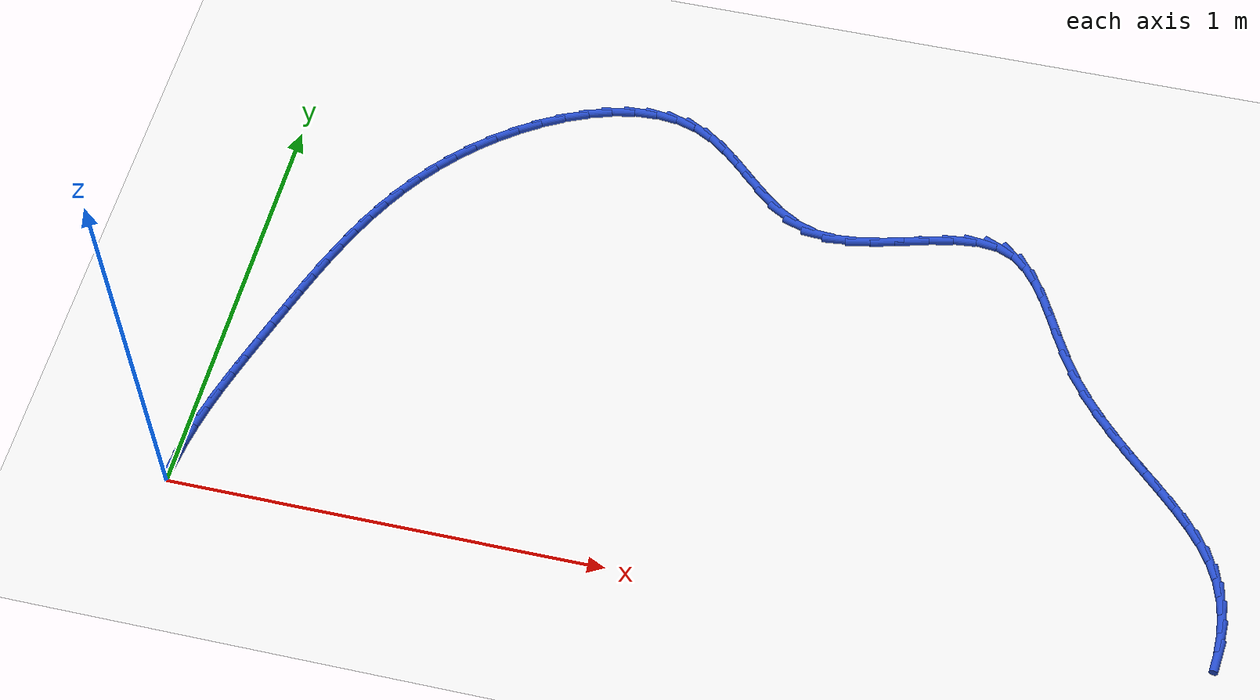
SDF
<sdf version="1.6">
 <world name="default">
  <model name="ground_plane">
   <static>1</static>
   <link name="link">
    <collision name="collision">
     <geometry><plane><normal>0 0 1</normal><size>100 100</size></plane></geometry>
     <surface><friction><ode><mu>100</mu><mu2>50</mu2></ode></friction></surface>
    </collision>
    <visual name="visual">
     <cast_shadows>0</cast_shadows>
     <geometry><plane><normal>0 0 1</normal><size>100 100</size></plane></geometry>
     <material>
      <script><uri>file://media/materials/scripts/gazebo.material</uri><name>Gazebo/WhiteGlow</name></script>
     </material>
    </visual>
   </link>
  </model>
  <model name="line">
   <link name="link_1">
    <pose>0.0035729545520218997 0.05207063967237306 0.01 0 1.57 1.4427990374859403</pose>
    <collision name="collision">
     <geometry><cylinder><radius>0.01</radius><length>0.08</length></cylinder></geometry>
    </collision>
    <visual name="visual">
     <material>
      <script><name>Gazebo/Blue</name><uri>file://media/materials/scripts/gazebo.material</uri></script>
     </material>
     <geometry><cylinder><radius>0.01</radius><length>0.08</length></cylinder></geometry>
    </visual>
   </link>
   <link name="link_2">
    <pose>0.010229735788563515 0.10379351710880236 0.01 0 1.57 1.3916028461294085</pose>
    <collision name="collision">
     <geometry><cylinder><radius>0.01</radius><length>0.08</length></cylinder></geometry>
    </collision>
    <visual name="visual">
     <material>
      <script><name>Gazebo/Blue</name><uri>file://media/materials/scripts/gazebo.material</uri></script>
     </material>
     <geometry><cylinder><radius>0.01</radius><length>0.08</length></cylinder></geometry>
    </visual>
   </link>
   <link name="link_3">
    <pose>0.01954264943447804 0.15520732642693813 0.01 0 1.57 1.3488477445646985</pose>
    <collision name="collision">
     <geometry><cylinder><radius>0.01</radius><length>0.08</length></cylinder></geometry>
    </collision>
    <visual name="visual">
     <material>
      <script><name>Gazebo/Blue</name><uri>file://media/materials/scripts/gazebo.material</uri></script>
     </material>
     <geometry><cylinder><radius>0.01</radius><length>0.08</length></cylinder></geometry>
    </visual>
   </link>
   <link name="link_4">
    <pose>0.031084001214618663 0.20635076174443048 0.01 0 1.57 1.3144967172494701</pose>
    <collision name="collision">
     <geometry><cylinder><radius>0.01</radius><length>0.08</length></cylinder></geometry>
    </collision>
    <visual name="visual">
     <material>
      <script><name>Gazebo/Blue</name><uri>file://media/materials/scripts/gazebo.material</uri></script>
     </material>
     <geometry><cylinder><radius>0.01</radius><length>0.08</length></cylinder></geometry>
    </visual>
   </link>
   <link name="link_5">
    <pose>0.04442609685383854 0.2572625171789295 0.01 0 1.57 1.288417019254447</pose>
    <collision name="collision">
     <geometry><cylinder><radius>0.01</radius><length>0.08</length></cylinder></geometry>
    </collision>
    <visual name="visual">
     <material>
      <script><name>Gazebo/Blue</name><uri>file://media/materials/scripts/gazebo.material</uri></script>
     </material>
     <geometry><cylinder><radius>0.01</radius><length>0.08</length></cylinder></geometry>
    </visual>
   </link>
   <link name="link_6">
    <pose>0.05914124207699089 0.30798128684808523 0.01 0 1.57 1.270452076002687</pose>
    <collision name="collision">
     <geometry><cylinder><radius>0.01</radius><length>0.08</length></cylinder></geometry>
    </collision>
    <visual name="visual">
     <material>
      <script><name>Gazebo/Blue</name><uri>file://media/materials/scripts/gazebo.material</uri></script>
     </material>
     <geometry><cylinder><radius>0.01</radius><length>0.08</length></cylinder></geometry>
    </visual>
   </link>
   <link name="link_7">
    <pose>0.07480174260892881 0.3585457648695478 0.01 0 1.57 1.26047281146192</pose>
    <collision name="collision">
     <geometry><cylinder><radius>0.01</radius><length>0.08</length></cylinder></geometry>
    </collision>
    <visual name="visual">
     <material>
      <script><name>Gazebo/Blue</name><uri>file://media/materials/scripts/gazebo.material</uri></script>
     </material>
     <geometry><cylinder><radius>0.01</radius><length>0.08</length></cylinder></geometry>
    </visual>
   </link>
   <link name="link_8">
    <pose>0.09097990417450555 0.4089946453609672 0.01 0 1.57 1.2581078427274297</pose>
    <collision name="collision">
     <geometry><cylinder><radius>0.01</radius><length>0.08</length></cylinder></geometry>
    </collision>
    <visual name="visual">
     <material>
      <script><name>Gazebo/Blue</name><uri>file://media/materials/scripts/gazebo.material</uri></script>
     </material>
     <geometry><cylinder><radius>0.01</radius><length>0.08</length></cylinder></geometry>
    </visual>
   </link>
   <link name="link_9">
    <pose>0.10726375738983393 0.4593631404900979 0.01 0 1.57 1.2565748195071877</pose>
    <collision name="collision">
     <geometry><cylinder><radius>0.01</radius><length>0.08</length></cylinder></geometry>
    </collision>
    <visual name="visual">
     <material>
      <script><name>Gazebo/Blue</name><uri>file://media/materials/scripts/gazebo.material</uri></script>
     </material>
     <geometry><cylinder><radius>0.01</radius><length>0.08</length></cylinder></geometry>
    </visual>
   </link>
   <link name="link_10">
    <pose>0.12359295539463723 0.5096086029349738 0.01 0 1.57 1.2491787727624224</pose>
    <collision name="collision">
     <geometry><cylinder><radius>0.01</radius><length>0.08</length></cylinder></geometry>
    </collision>
    <visual name="visual">
     <material>
      <script><name>Gazebo/Blue</name><uri>file://media/materials/scripts/gazebo.material</uri></script>
     </material>
     <geometry><cylinder><radius>0.01</radius><length>0.08</length></cylinder></geometry>
    </visual>
   </link>
   <link name="link_11">
    <pose>0.14025327953296127 0.5596117424865639 0.01 0 1.57 1.2355857287433745</pose>
    <collision name="collision">
     <geometry><cylinder><radius>0.01</radius><length>0.08</length></cylinder></geometry>
    </collision>
    <visual name="visual">
     <material>
      <script><name>Gazebo/Blue</name><uri>file://media/materials/scripts/gazebo.material</uri></script>
     </material>
     <geometry><cylinder><radius>0.01</radius><length>0.08</length></cylinder></geometry>
    </visual>
   </link>
   <link name="link_12">
    <pose>0.15754513709081325 0.609250030325392 0.01 0 1.57 1.2157372158213886</pose>
    <collision name="collision">
     <geometry><cylinder><radius>0.01</radius><length>0.08</length></cylinder></geometry>
    </collision>
    <visual name="visual">
     <material>
      <script><name>Gazebo/Blue</name><uri>file://media/materials/scripts/gazebo.material</uri></script>
     </material>
     <geometry><cylinder><radius>0.01</radius><length>0.08</length></cylinder></geometry>
    </visual>
   </link>
   <link name="link_13">
    <pose>0.1757689353542005 0.6584009376319819 0.01 0 1.57 1.1895842567282633</pose>
    <collision name="collision">
     <geometry><cylinder><radius>0.01</radius><length>0.08</length></cylinder></geometry>
    </collision>
    <visual name="visual">
     <material>
      <script><name>Gazebo/Blue</name><uri>file://media/materials/scripts/gazebo.material</uri></script>
     </material>
     <geometry><cylinder><radius>0.01</radius><length>0.08</length></cylinder></geometry>
    </visual>
   </link>
   <link name="link_14">
    <pose>0.19522508160913027 0.7069419355868571 0.01 0 1.57 1.1571110114907803</pose>
    <collision name="collision">
     <geometry><cylinder><radius>0.01</radius><length>0.08</length></cylinder></geometry>
    </collision>
    <visual name="visual">
     <material>
      <script><name>Gazebo/Blue</name><uri>file://media/materials/scripts/gazebo.material</uri></script>
     </material>
     <geometry><cylinder><radius>0.01</radius><length>0.08</length></cylinder></geometry>
    </visual>
   </link>
   <link name="link_15">
    <pose>0.21621398314160983 0.7547504953705414 0.01 0 1.57 1.1183662119507802</pose>
    <collision name="collision">
     <geometry><cylinder><radius>0.01</radius><length>0.08</length></cylinder></geometry>
    </collision>
    <visual name="visual">
     <material>
      <script><name>Gazebo/Blue</name><uri>file://media/materials/scripts/gazebo.material</uri></script>
     </material>
     <geometry><cylinder><radius>0.01</radius><length>0.08</length></cylinder></geometry>
    </visual>
   </link>
   <link name="link_16">
    <pose>0.23903604723764654 0.8017040881635586 0.01 0 1.57 1.07350096493883</pose>
    <collision name="collision">
     <geometry><cylinder><radius>0.01</radius><length>0.08</length></cylinder></geometry>
    </collision>
    <visual name="visual">
     <material>
      <script><name>Gazebo/Blue</name><uri>file://media/materials/scripts/gazebo.material</uri></script>
     </material>
     <geometry><cylinder><radius>0.01</radius><length>0.08</length></cylinder></geometry>
    </visual>
   </link>
   <link name="link_17">
    <pose>0.26399168118324756 0.8476801851464322 0.01 0 1.57 1.0228093818827795</pose>
    <collision name="collision">
     <geometry><cylinder><radius>0.01</radius><length>0.08</length></cylinder></geometry>
    </collision>
    <visual name="visual">
     <material>
      <script><name>Gazebo/Blue</name><uri>file://media/materials/scripts/gazebo.material</uri></script>
     </material>
     <geometry><cylinder><radius>0.01</radius><length>0.08</length></cylinder></geometry>
    </visual>
   </link>
   <link name="link_18">
    <pose>0.29138129226442033 0.8925562574996861 0.01 0 1.57 0.9667657460764356</pose>
    <collision name="collision">
     <geometry><cylinder><radius>0.01</radius><length>0.08</length></cylinder></geometry>
    </collision>
    <visual name="visual">
     <material>
      <script><name>Gazebo/Blue</name><uri>file://media/materials/scripts/gazebo.material</uri></script>
     </material>
     <geometry><cylinder><radius>0.01</radius><length>0.08</length></cylinder></geometry>
    </visual>
   </link>
   <link name="link_19">
    <pose>0.32150528776717213 0.9362097764038444 0.01 0 1.57 0.9060493488679746</pose>
    <collision name="collision">
     <geometry><cylinder><radius>0.01</radius><length>0.08</length></cylinder></geometry>
    </collision>
    <visual name="visual">
     <material>
      <script><name>Gazebo/Blue</name><uri>file://media/materials/scripts/gazebo.material</uri></script>
     </material>
     <geometry><cylinder><radius>0.01</radius><length>0.08</length></cylinder></geometry>
    </visual>
   </link>
   <link name="link_20">
    <pose>0.35466407497751007 0.9785182130394301 0.01 0 1.57 0.8415471366857648</pose>
    <collision name="collision">
     <geometry><cylinder><radius>0.01</radius><length>0.08</length></cylinder></geometry>
    </collision>
    <visual name="visual">
     <material>
      <script><name>Gazebo/Blue</name><uri>file://media/materials/scripts/gazebo.material</uri></script>
     </material>
     <geometry><cylinder><radius>0.01</radius><length>0.08</length></cylinder></geometry>
    </visual>
   </link>
   <link name="link_21">
    <pose>0.3911580611814415 1.0193590385869669 0.01 0 1.57 0.7743265099411254</pose>
    <collision name="collision">
     <geometry><cylinder><radius>0.01</radius><length>0.08</length></cylinder></geometry>
    </collision>
    <visual name="visual">
     <material>
      <script><name>Gazebo/Blue</name><uri>file://media/materials/scripts/gazebo.material</uri></script>
     </material>
     <geometry><cylinder><radius>0.01</radius><length>0.08</length></cylinder></geometry>
    </visual>
   </link>
   <link name="link_22">
    <pose>0.4312876536649738 1.0586097242269792 0.01 0 1.57 0.7058721058696109</pose>
    <collision name="collision">
     <geometry><cylinder><radius>0.01</radius><length>0.08</length></cylinder></geometry>
    </collision>
    <visual name="visual">
     <material>
      <script><name>Gazebo/Blue</name><uri>file://media/materials/scripts/gazebo.material</uri></script>
     </material>
     <geometry><cylinder><radius>0.01</radius><length>0.08</length></cylinder></geometry>
    </visual>
   </link>
   <link name="link_23">
    <pose>0.47520745321118857 1.096045927568962 0.01 0 1.57 0.6371506141087543</pose>
    <collision name="collision">
     <geometry><cylinder><radius>0.01</radius><length>0.08</length></cylinder></geometry>
    </collision>
    <visual name="visual">
     <material>
      <script><name>Gazebo/Blue</name><uri>file://media/materials/scripts/gazebo.material</uri></script>
     </material>
     <geometry><cylinder><radius>0.01</radius><length>0.08</length></cylinder></geometry>
    </visual>
   </link>
   <link name="link_24">
    <pose>0.5223938937195223 1.1309697567524502 0.01 0 1.57 0.5656986153214777</pose>
    <collision name="collision">
     <geometry><cylinder><radius>0.01</radius><length>0.08</length></cylinder></geometry>
    </collision>
    <visual name="visual">
     <material>
      <script><name>Gazebo/Blue</name><uri>file://media/materials/scripts/gazebo.material</uri></script>
     </material>
     <geometry><cylinder><radius>0.01</radius><length>0.08</length></cylinder></geometry>
    </visual>
   </link>
   <link name="link_25">
    <pose>0.5721263911060521 1.162545746461474 0.01 0 1.57 0.4883719128299961</pose>
    <collision name="collision">
     <geometry><cylinder><radius>0.01</radius><length>0.08</length></cylinder></geometry>
    </collision>
    <visual name="visual">
     <material>
      <script><name>Gazebo/Blue</name><uri>file://media/materials/scripts/gazebo.material</uri></script>
     </material>
     <geometry><cylinder><radius>0.01</radius><length>0.08</length></cylinder></geometry>
    </visual>
   </link>
   <link name="link_26">
    <pose>0.6236843397598721 1.1899384163482296 0.01 0 1.57 0.40174490105582505</pose>
    <collision name="collision">
     <geometry><cylinder><radius>0.01</radius><length>0.08</length></cylinder></geometry>
    </collision>
    <visual name="visual">
     <material>
      <script><name>Gazebo/Blue</name><uri>file://media/materials/scripts/gazebo.material</uri></script>
     </material>
     <geometry><cylinder><radius>0.01</radius><length>0.08</length></cylinder></geometry>
    </visual>
   </link>
   <link name="link_27">
    <pose>0.6763471340700766 1.2123122860649147 0.01 0 1.57 0.3018951826435892</pose>
    <collision name="collision">
     <geometry><cylinder><radius>0.01</radius><length>0.08</length></cylinder></geometry>
    </collision>
    <visual name="visual">
     <material>
      <script><name>Gazebo/Blue</name><uri>file://media/materials/scripts/gazebo.material</uri></script>
     </material>
     <geometry><cylinder><radius>0.01</radius><length>0.08</length></cylinder></geometry>
    </visual>
   </link>
   <link name="link_28">
    <pose>0.7293941684257602 1.228831875263726 0.01 0 1.57 0.18436869491970273</pose>
    <collision name="collision">
     <geometry><cylinder><radius>0.01</radius><length>0.08</length></cylinder></geometry>
    </collision>
    <visual name="visual">
     <material>
      <script><name>Gazebo/Blue</name><uri>file://media/materials/scripts/gazebo.material</uri></script>
     </material>
     <geometry><cylinder><radius>0.01</radius><length>0.08</length></cylinder></geometry>
    </visual>
   </link>
   <link name="link_29">
    <pose>0.782104837216016 1.2386617035968588 0.01 0 1.57 0.0445865423281976</pose>
    <collision name="collision">
     <geometry><cylinder><radius>0.01</radius><length>0.08</length></cylinder></geometry>
    </collision>
    <visual name="visual">
     <material>
      <script><name>Gazebo/Blue</name><uri>file://media/materials/scripts/gazebo.material</uri></script>
     </material>
     <geometry><cylinder><radius>0.01</radius><length>0.08</length></cylinder></geometry>
    </visual>
   </link>
   <link name="link_30">
    <pose>0.8337585348299392 1.2409662907165113 0.01 0 1.57 -0.12083200679489156</pose>
    <collision name="collision">
     <geometry><cylinder><radius>0.01</radius><length>0.08</length></cylinder></geometry>
    </collision>
    <visual name="visual">
     <material>
      <script><name>Gazebo/Blue</name><uri>file://media/materials/scripts/gazebo.material</uri></script>
     </material>
     <geometry><cylinder><radius>0.01</radius><length>0.08</length></cylinder></geometry>
    </visual>
   </link>
   <link name="link_31">
    <pose>0.8836346556566232 1.2349101562748794 0.01 0 1.57 -0.3114518587860264</pose>
    <collision name="collision">
     <geometry><cylinder><radius>0.01</radius><length>0.08</length></cylinder></geometry>
    </collision>
    <visual name="visual">
     <material>
      <script><name>Gazebo/Blue</name><uri>file://media/materials/scripts/gazebo.material</uri></script>
     </material>
     <geometry><cylinder><radius>0.01</radius><length>0.08</length></cylinder></geometry>
    </visual>
   </link>
   <link name="link_32">
    <pose>0.9310125940851623 1.2196578199241606 0.01 0 1.57 -0.5093944769780955</pose>
    <collision name="collision">
     <geometry><cylinder><radius>0.01</radius><length>0.08</length></cylinder></geometry>
    </collision>
    <visual name="visual">
     <material>
      <script><name>Gazebo/Blue</name><uri>file://media/materials/scripts/gazebo.material</uri></script>
     </material>
     <geometry><cylinder><radius>0.01</radius><length>0.08</length></cylinder></geometry>
    </visual>
   </link>
   <link name="link_33">
    <pose>0.9753923550490133 1.1948688829285614 0.01 0 1.57 -0.6541049799139567</pose>
    <collision name="collision">
     <geometry><cylinder><radius>0.01</radius><length>0.08</length></cylinder></geometry>
    </collision>
    <visual name="visual">
     <material>
      <script><name>Gazebo/Blue</name><uri>file://media/materials/scripts/gazebo.material</uri></script>
     </material>
     <geometry><cylinder><radius>0.01</radius><length>0.08</length></cylinder></geometry>
    </visual>
   </link>
   <link name="link_34">
    <pose>1.0173772684869675 1.1626789656555092 0.01 0 1.57 -0.7355201534508279</pose>
    <collision name="collision">
     <geometry><cylinder><radius>0.01</radius><length>0.08</length></cylinder></geometry>
    </collision>
    <visual name="visual">
     <material>
      <script><name>Gazebo/Blue</name><uri>file://media/materials/scripts/gazebo.material</uri></script>
     </material>
     <geometry><cylinder><radius>0.01</radius><length>0.08</length></cylinder></geometry>
    </visual>
   </link>
   <link name="link_35">
    <pose>1.0579148783533048 1.1259961539507097 0.01 0 1.57 -0.7627905425169553</pose>
    <collision name="collision">
     <geometry><cylinder><radius>0.01</radius><length>0.08</length></cylinder></geometry>
    </collision>
    <visual name="visual">
     <material>
      <script><name>Gazebo/Blue</name><uri>file://media/materials/scripts/gazebo.material</uri></script>
     </material>
     <geometry><cylinder><radius>0.01</radius><length>0.08</length></cylinder></geometry>
    </visual>
   </link>
   <link name="link_36">
    <pose>1.097952842314386 1.087728788846042 0.01 0 1.57 -0.7396800916671589</pose>
    <collision name="collision">
     <geometry><cylinder><radius>0.01</radius><length>0.08</length></cylinder></geometry>
    </collision>
    <visual name="visual">
     <material>
      <script><name>Gazebo/Blue</name><uri>file://media/materials/scripts/gazebo.material</uri></script>
     </material>
     <geometry><cylinder><radius>0.01</radius><length>0.08</length></cylinder></geometry>
    </visual>
   </link>
   <link name="link_37">
    <pose>1.1384388180365728 1.050785211373385 0.01 0 1.57 -0.6630756678665419</pose>
    <collision name="collision">
     <geometry><cylinder><radius>0.01</radius><length>0.08</length></cylinder></geometry>
    </collision>
    <visual name="visual">
     <material>
      <script><name>Gazebo/Blue</name><uri>file://media/materials/scripts/gazebo.material</uri></script>
     </material>
     <geometry><cylinder><radius>0.01</radius><length>0.08</length></cylinder></geometry>
    </visual>
   </link>
   <link name="link_38">
    <pose>1.1803204631862243 1.0180737625646175 0.01 0 1.57 -0.5242375365830264</pose>
    <collision name="collision">
     <geometry><cylinder><radius>0.01</radius><length>0.08</length></cylinder></geometry>
    </collision>
    <visual name="visual">
     <material>
      <script><name>Gazebo/Blue</name><uri>file://media/materials/scripts/gazebo.material</uri></script>
     </material>
     <geometry><cylinder><radius>0.01</radius><length>0.08</length></cylinder></geometry>
    </visual>
   </link>
   <link name="link_39">
    <pose>1.2245454354297027 0.992502783451618 0.01 0 1.57 -0.3157472961545364</pose>
    <collision name="collision">
     <geometry><cylinder><radius>0.01</radius><length>0.08</length></cylinder></geometry>
    </collision>
    <visual name="visual">
     <material>
      <script><name>Gazebo/Blue</name><uri>file://media/materials/scripts/gazebo.material</uri></script>
     </material>
     <geometry><cylinder><radius>0.01</radius><length>0.08</length></cylinder></geometry>
    </visual>
   </link>
   <link name="link_40">
    <pose>1.2720613380431465 0.9769804647768914 0.01 0 1.57 -0.07296806648989863</pose>
    <collision name="collision">
     <geometry><cylinder><radius>0.01</radius><length>0.08</length></cylinder></geometry>
    </collision>
    <visual name="visual">
     <material>
      <script><name>Gazebo/Blue</name><uri>file://media/materials/scripts/gazebo.material</uri></script>
     </material>
     <geometry><cylinder><radius>0.01</radius><length>0.08</length></cylinder></geometry>
    </visual>
   </link>
   <link name="link_41">
    <pose>1.323386452826087 0.9732287094854568 0.01 0 1.57 0.10461789030769843</pose>
    <collision name="collision">
     <geometry><cylinder><radius>0.01</radius><length>0.08</length></cylinder></geometry>
    </collision>
    <visual name="visual">
     <material>
      <script><name>Gazebo/Blue</name><uri>file://media/materials/scripts/gazebo.material</uri></script>
     </material>
     <geometry><cylinder><radius>0.01</radius><length>0.08</length></cylinder></geometry>
    </visual>
   </link>
   <link name="link_42">
    <pose>1.3775729698512553 0.9789183613038908 0.01 0 1.57 0.21080977844076354</pose>
    <collision name="collision">
     <geometry><cylinder><radius>0.01</radius><length>0.08</length></cylinder></geometry>
    </collision>
    <visual name="visual">
     <material>
      <script><name>Gazebo/Blue</name><uri>file://media/materials/scripts/gazebo.material</uri></script>
     </material>
     <geometry><cylinder><radius>0.01</radius><length>0.08</length></cylinder></geometry>
    </visual>
   </link>
   <link name="link_43">
    <pose>1.4333603952737892 0.9908562654492071 0.01 0 1.57 0.2610277934951713</pose>
    <collision name="collision">
     <geometry><cylinder><radius>0.01</radius><length>0.08</length></cylinder></geometry>
    </collision>
    <visual name="visual">
     <material>
      <script><name>Gazebo/Blue</name><uri>file://media/materials/scripts/gazebo.material</uri></script>
     </material>
     <geometry><cylinder><radius>0.01</radius><length>0.08</length></cylinder></geometry>
    </visual>
   </link>
   <link name="link_44">
    <pose>1.4894882352488263 1.0058492671384203 0.01 0 1.57 0.262848069948994</pose>
    <collision name="collision">
     <geometry><cylinder><radius>0.01</radius><length>0.08</length></cylinder></geometry>
    </collision>
    <visual name="visual">
     <material>
      <script><name>Gazebo/Blue</name><uri>file://media/materials/scripts/gazebo.material</uri></script>
     </material>
     <geometry><cylinder><radius>0.01</radius><length>0.08</length></cylinder></geometry>
    </visual>
   </link>
   <link name="link_45">
    <pose>1.544695995931503 1.020704211588544 0.01 0 1.57 0.21399014740650962</pose>
    <collision name="collision">
     <geometry><cylinder><radius>0.01</radius><length>0.08</length></cylinder></geometry>
    </collision>
    <visual name="visual">
     <material>
      <script><name>Gazebo/Blue</name><uri>file://media/materials/scripts/gazebo.material</uri></script>
     </material>
     <geometry><cylinder><radius>0.01</radius><length>0.08</length></cylinder></geometry>
    </visual>
   </link>
   <link name="link_46">
    <pose>1.5977231834769574 1.0322279440165931 0.01 0 1.57 0.10048232320105349</pose>
    <collision name="collision">
     <geometry><cylinder><radius>0.01</radius><length>0.08</length></cylinder></geometry>
    </collision>
    <visual name="visual">
     <material>
      <script><name>Gazebo/Blue</name><uri>file://media/materials/scripts/gazebo.material</uri></script>
     </material>
     <geometry><cylinder><radius>0.01</radius><length>0.08</length></cylinder></geometry>
    </visual>
   </link>
   <link name="link_47">
    <pose>1.647309304040325 1.0372273096395808 0.01 0 1.57 -0.10473294667288804</pose>
    <collision name="collision">
     <geometry><cylinder><radius>0.01</radius><length>0.08</length></cylinder></geometry>
    </collision>
    <visual name="visual">
     <material>
      <script><name>Gazebo/Blue</name><uri>file://media/materials/scripts/gazebo.material</uri></script>
     </material>
     <geometry><cylinder><radius>0.01</radius><length>0.08</length></cylinder></geometry>
    </visual>
   </link>
   <link name="link_48">
    <pose>1.692193863776745 1.0325091536745217 0.01 0 1.57 -0.41792675565798343</pose>
    <collision name="collision">
     <geometry><cylinder><radius>0.01</radius><length>0.08</length></cylinder></geometry>
    </collision>
    <visual name="visual">
     <material>
      <script><name>Gazebo/Blue</name><uri>file://media/materials/scripts/gazebo.material</uri></script>
     </material>
     <geometry><cylinder><radius>0.01</radius><length>0.08</length></cylinder></geometry>
    </visual>
   </link>
   <link name="link_49">
    <pose>1.7312501048889741 1.0151647402972477 0.01 0 1.57 -0.7212500035879534</pose>
    <collision name="collision">
     <geometry><cylinder><radius>0.01</radius><length>0.08</length></cylinder></geometry>
    </collision>
    <visual name="visual">
     <material>
      <script><name>Gazebo/Blue</name><uri>file://media/materials/scripts/gazebo.material</uri></script>
     </material>
     <geometry><cylinder><radius>0.01</radius><length>0.08</length></cylinder></geometry>
    </visual>
   </link>
   <link name="link_50">
    <pose>1.7648993177219 0.9855775966793549 0.01 0 1.57 -0.9246587629446178</pose>
    <collision name="collision">
     <geometry><cylinder><radius>0.01</radius><length>0.08</length></cylinder></geometry>
    </collision>
    <visual name="visual">
     <material>
      <script><name>Gazebo/Blue</name><uri>file://media/materials/scripts/gazebo.material</uri></script>
     </material>
     <geometry><cylinder><radius>0.01</radius><length>0.08</length></cylinder></geometry>
    </visual>
   </link>
   <link name="link_51">
    <pose>1.7945583925531294 0.9462486110278513 0.01 0 1.57 -1.04341330971691</pose>
    <collision name="collision">
     <geometry><cylinder><radius>0.01</radius><length>0.08</length></cylinder></geometry>
    </collision>
    <visual name="visual">
     <material>
      <script><name>Gazebo/Blue</name><uri>file://media/materials/scripts/gazebo.material</uri></script>
     </material>
     <geometry><cylinder><radius>0.01</radius><length>0.08</length></cylinder></geometry>
    </visual>
   </link>
   <link name="link_52">
    <pose>1.8216606724528261 0.8997136620120122 0.01 0 1.57 -1.1012867330618223</pose>
    <collision name="collision">
     <geometry><cylinder><radius>0.01</radius><length>0.08</length></cylinder></geometry>
    </collision>
    <visual name="visual">
     <material>
      <script><name>Gazebo/Blue</name><uri>file://media/materials/scripts/gazebo.material</uri></script>
     </material>
     <geometry><cylinder><radius>0.01</radius><length>0.08</length></cylinder></geometry>
    </visual>
   </link>
   <link name="link_53">
    <pose>1.847639500491152 0.8485086283011136 0.01 0 1.57 -1.112877896980893</pose>
    <collision name="collision">
     <geometry><cylinder><radius>0.01</radius><length>0.08</length></cylinder></geometry>
    </collision>
    <visual name="visual">
     <material>
      <script><name>Gazebo/Blue</name><uri>file://media/materials/scripts/gazebo.material</uri></script>
     </material>
     <geometry><cylinder><radius>0.01</radius><length>0.08</length></cylinder></geometry>
    </visual>
   </link>
   <link name="link_54">
    <pose>1.8739282197382698 0.7951693885644302 0.01 0 1.57 -1.083805874959155</pose>
    <collision name="collision">
     <geometry><cylinder><radius>0.01</radius><length>0.08</length></cylinder></geometry>
    </collision>
    <visual name="visual">
     <material>
      <script><name>Gazebo/Blue</name><uri>file://media/materials/scripts/gazebo.material</uri></script>
     </material>
     <geometry><cylinder><radius>0.01</radius><length>0.08</length></cylinder></geometry>
    </visual>
   </link>
   <link name="link_55">
    <pose>1.901960173264342 0.742231821471237 0.01 0 1.57 -1.0152717243889782</pose>
    <collision name="collision">
     <geometry><cylinder><radius>0.01</radius><length>0.08</length></cylinder></geometry>
    </collision>
    <visual name="visual">
     <material>
      <script><name>Gazebo/Blue</name><uri>file://media/materials/scripts/gazebo.material</uri></script>
     </material>
     <geometry><cylinder><radius>0.01</radius><length>0.08</length></cylinder></geometry>
    </visual>
   </link>
   <link name="link_56">
    <pose>1.9330748572564969 0.6921060615678157 0.01 0 1.57 -0.9367641811042429</pose>
    <collision name="collision">
     <geometry><cylinder><radius>0.01</radius><length>0.08</length></cylinder></geometry>
    </collision>
    <visual name="visual">
     <material>
      <script><name>Gazebo/Blue</name><uri>file://media/materials/scripts/gazebo.material</uri></script>
     </material>
     <geometry><cylinder><radius>0.01</radius><length>0.08</length></cylinder></geometry>
    </visual>
   </link>
   <link name="link_57">
    <pose>1.9673430254851392 0.6455022732220153 0.01 0 1.57 -0.8726429496231685</pose>
    <collision name="collision">
     <geometry><cylinder><radius>0.01</radius><length>0.08</length></cylinder></geometry>
    </collision>
    <visual name="visual">
     <material>
      <script><name>Gazebo/Blue</name><uri>file://media/materials/scripts/gazebo.material</uri></script>
     </material>
     <geometry><cylinder><radius>0.01</radius><length>0.08</length></cylinder></geometry>
    </visual>
   </link>
   <link name="link_58">
    <pose>2.00392371492149 0.6019090242432694 0.01 0 1.57 -0.824399737058991</pose>
    <collision name="collision">
     <geometry><cylinder><radius>0.01</radius><length>0.08</length></cylinder></geometry>
    </collision>
    <visual name="visual">
     <material>
      <script><name>Gazebo/Blue</name><uri>file://media/materials/scripts/gazebo.material</uri></script>
     </material>
     <geometry><cylinder><radius>0.01</radius><length>0.08</length></cylinder></geometry>
    </visual>
   </link>
   <link name="link_59">
    <pose>2.041955974059701 0.5607881001607921 0.01 0 1.57 -0.7926456725663542</pose>
    <collision name="collision">
     <geometry><cylinder><radius>0.01</radius><length>0.08</length></cylinder></geometry>
    </collision>
    <visual name="visual">
     <material>
      <script><name>Gazebo/Blue</name><uri>file://media/materials/scripts/gazebo.material</uri></script>
     </material>
     <geometry><cylinder><radius>0.01</radius><length>0.08</length></cylinder></geometry>
    </visual>
   </link>
   <link name="link_60">
    <pose>2.080578851393925 0.5216012865037986 0.01 0 1.57 -0.7780224002680669</pose>
    <collision name="collision">
     <geometry><cylinder><radius>0.01</radius><length>0.08</length></cylinder></geometry>
    </collision>
    <visual name="visual">
     <material>
      <script><name>Gazebo/Blue</name><uri>file://media/materials/scripts/gazebo.material</uri></script>
     </material>
     <geometry><cylinder><radius>0.01</radius><length>0.08</length></cylinder></geometry>
    </visual>
   </link>
   <link name="link_61">
    <pose>2.118931395418314 0.4838103688015034 0.01 0 1.57 -0.7815140894746363</pose>
    <collision name="collision">
     <geometry><cylinder><radius>0.01</radius><length>0.08</length></cylinder></geometry>
    </collision>
    <visual name="visual">
     <material>
      <script><name>Gazebo/Blue</name><uri>file://media/materials/scripts/gazebo.material</uri></script>
     </material>
     <geometry><cylinder><radius>0.01</radius><length>0.08</length></cylinder></geometry>
    </visual>
   </link>
   <link name="link_62">
    <pose>2.1561526546270193 0.4468771325831217 0.01 0 1.57 -0.8046704499025903</pose>
    <collision name="collision">
     <geometry><cylinder><radius>0.01</radius><length>0.08</length></cylinder></geometry>
    </collision>
    <visual name="visual">
     <material>
      <script><name>Gazebo/Blue</name><uri>file://media/materials/scripts/gazebo.material</uri></script>
     </material>
     <geometry><cylinder><radius>0.01</radius><length>0.08</length></cylinder></geometry>
    </visual>
   </link>
   <link name="link_63">
    <pose>2.1913816775141934 0.41026336337786773 0.01 0 1.57 -0.8497045158711476</pose>
    <collision name="collision">
     <geometry><cylinder><radius>0.01</radius><length>0.08</length></cylinder></geometry>
    </collision>
    <visual name="visual">
     <material>
      <script><name>Gazebo/Blue</name><uri>file://media/materials/scripts/gazebo.material</uri></script>
     </material>
     <geometry><cylinder><radius>0.01</radius><length>0.08</length></cylinder></geometry>
    </visual>
   </link>
   <link name="link_64">
    <pose>2.2237575125739886 0.3734308467149567 0.01 0 1.57 -0.9193478382451928</pose>
    <collision name="collision">
     <geometry><cylinder><radius>0.01</radius><length>0.08</length></cylinder></geometry>
    </collision>
    <visual name="visual">
     <material>
      <script><name>Gazebo/Blue</name><uri>file://media/materials/scripts/gazebo.material</uri></script>
     </material>
     <geometry><cylinder><radius>0.01</radius><length>0.08</length></cylinder></geometry>
    </visual>
   </link>
   <link name="link_65">
    <pose>2.2524192083005574 0.3358413681236032 0.01 0 1.57 -1.0162071746384247</pose>
    <collision name="collision">
     <geometry><cylinder><radius>0.01</radius><length>0.08</length></cylinder></geometry>
    </collision>
    <visual name="visual">
     <material>
      <script><name>Gazebo/Blue</name><uri>file://media/materials/scripts/gazebo.material</uri></script>
     </material>
     <geometry><cylinder><radius>0.01</radius><length>0.08</length></cylinder></geometry>
    </visual>
   </link>
   <link name="link_66">
    <pose>2.2765058131880513 0.29695671313302185 0.01 0 1.57 -1.1399993831500304</pose>
    <collision name="collision">
     <geometry><cylinder><radius>0.01</radius><length>0.08</length></cylinder></geometry>
    </collision>
    <visual name="visual">
     <material>
      <script><name>Gazebo/Blue</name><uri>file://media/materials/scripts/gazebo.material</uri></script>
     </material>
     <geometry><cylinder><radius>0.01</radius><length>0.08</length></cylinder></geometry>
    </visual>
   </link>
   <link name="link_67">
    <pose>2.2952065788993368 0.25626624823606614 0.01 0 1.57 -1.2708781172042392</pose>
    <collision name="collision">
     <geometry><cylinder><radius>0.01</radius><length>0.08</length></cylinder></geometry>
    </collision>
    <visual name="visual">
     <material>
      <script><name>Gazebo/Blue</name><uri>file://media/materials/scripts/gazebo.material</uri></script>
     </material>
     <geometry><cylinder><radius>0.01</radius><length>0.08</length></cylinder></geometry>
    </visual>
   </link>
   <link name="link_68">
    <pose>2.3083907863001993 0.21363293906681668 0.01 0 1.57 -1.392130911115739</pose>
    <collision name="collision">
     <geometry><cylinder><radius>0.01</radius><length>0.08</length></cylinder></geometry>
    </collision>
    <visual name="visual">
     <material>
      <script><name>Gazebo/Blue</name><uri>file://media/materials/scripts/gazebo.material</uri></script>
     </material>
     <geometry><cylinder><radius>0.01</radius><length>0.08</length></cylinder></geometry>
    </visual>
   </link>
   <link name="link_69">
    <pose>2.316417041386933 0.16918858007987508 0.01 0 1.57 -1.500706799169652</pose>
    <collision name="collision">
     <geometry><cylinder><radius>0.01</radius><length>0.08</length></cylinder></geometry>
    </collision>
    <visual name="visual">
     <material>
      <script><name>Gazebo/Blue</name><uri>file://media/materials/scripts/gazebo.material</uri></script>
     </material>
     <geometry><cylinder><radius>0.01</radius><length>0.08</length></cylinder></geometry>
    </visual>
   </link>
   <link name="link_70">
    <pose>2.3196547127702085 0.12307087856927765 0.01 0 1.57 1.5460068418699018</pose>
    <collision name="collision">
     <geometry><cylinder><radius>0.01</radius><length>0.08</length></cylinder></geometry>
    </collision>
    <visual name="visual">
     <material>
      <script><name>Gazebo/Blue</name><uri>file://media/materials/scripts/gazebo.material</uri></script>
     </material>
     <geometry><cylinder><radius>0.01</radius><length>0.08</length></cylinder></geometry>
    </visual>
   </link>
   <link name="link_71">
    <pose>2.318473169060698 0.0754175418290622 0.01 0 1.57 1.4645464753518946</pose>
    <collision name="collision">
     <geometry><cylinder><radius>0.01</radius><length>0.08</length></cylinder></geometry>
    </collision>
    <visual name="visual">
     <material>
      <script><name>Gazebo/Blue</name><uri>file://media/materials/scripts/gazebo.material</uri></script>
     </material>
     <geometry><cylinder><radius>0.01</radius><length>0.08</length></cylinder></geometry>
    </visual>
   </link>
  </model>
 </world>
</sdf>
